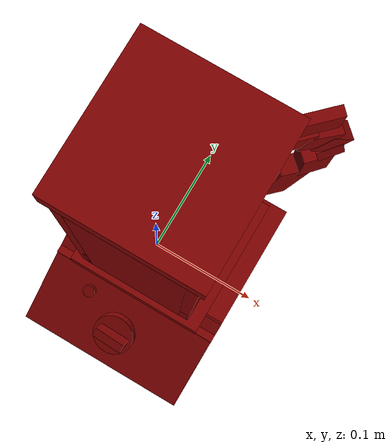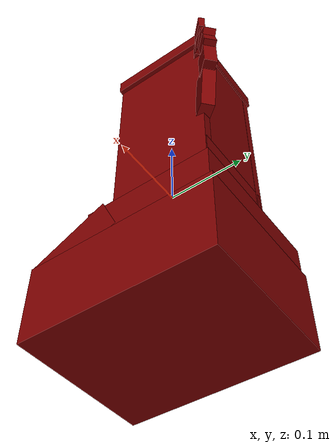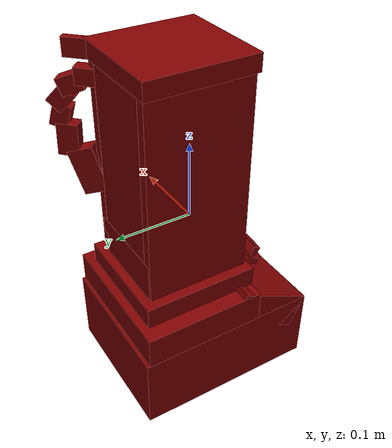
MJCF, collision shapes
<?xml version='1.0' encoding='UTF-8'?>
<mujoco model="model">
  <option timestep="0.002" gravity="0.0 0.0 -9.81"/>
  <compiler angle="radian"/>
  <asset>
    <mesh file="visuals/Blade001.obj" name="Blade001_vis"/>
    <mesh file="visuals/Body001.obj" name="Body001_vis"/>
    <mesh file="visuals/Button001.obj" name="Button001_vis"/>
    <mesh file="visuals/Jug001.obj" name="Jug001_vis"/>
    <mesh file="visuals/Jug001_Clear.obj" name="Jug001_Clear_vis"/>
    <mesh file="visuals/Knob001.obj" name="Knob001_vis"/>
    <mesh file="visuals/Lid001.obj" name="Lid001_vis"/>
    <texture file="visuals/T_BC001.png" name="Body001_material" type="2d"/>
    <material name="Body001_material" rgba="1 1 1 1.0" texture="Body001_material" shininess="0.141421377658844" specular="0.3103448502657381"/>
    <texture file="visuals/T_BC001.png" name="Button001_material" type="2d"/>
    <material name="Button001_material" rgba="1 1 1 1.0" texture="Button001_material" shininess="0.141421377658844" specular="0.3103448502657381"/>
    <texture file="visuals/T_BC001.png" name="Jug001_Clear_material" type="2d"/>
    <material name="Jug001_Clear_material" rgba="1 1 1 0.699999988079071" texture="Jug001_Clear_material" shininess="0.141421377658844" specular="0.3103448502657381"/>
    <texture file="visuals/T_BC001.png" name="Blade001_material" type="2d"/>
    <material name="Blade001_material" rgba="1 1 1 1.0" texture="Blade001_material" shininess="0.141421377658844" specular="3"/>
    <texture file="visuals/T_BC001.png" name="Jug001_material" type="2d"/>
    <material name="Jug001_material" rgba="1 1 1 1.0" texture="Jug001_material" shininess="0.141421377658844" specular="0.3103448502657381"/>
    <texture file="visuals/T_BC001.png" name="Lid001_material" type="2d"/>
    <material name="Lid001_material" rgba="1 1 1 1.0" texture="Lid001_material" shininess="0.141421377658844" specular="0.3103448502657381"/>
    <texture file="visuals/T_BC001.png" name="Knob001_material" type="2d"/>
    <material name="Knob001_material" rgba="1 1 1 1.0" texture="Knob001_material" shininess="0.141421377658844" specular="0.3103448502657381"/>
  </asset>
  <default>
    <default class="visual">
      <geom conaffinity="0" contype="0" group="1" type="mesh"/>
    </default>
    <default class="collision">
      <geom group="0" rgba="0.5 0 0 0.5"/>
    </default>
    <default class="spawn">
      <geom group="0" rgba="1 1 1 0.5" contype="0" conaffinity="0"/>
      <site group="0" rgba="1 1 1 0.5"/>
    </default>
    <default class="region">
      <geom group="1" conaffinity="0" contype="0" rgba="0 1 0 0"/>
    </default>
  </default>
  <worldbody>
    <body>
      <body name="object">
        <geom mesh="Body001_vis" type="mesh" solimp="0.998 0.998 0.001" solref="0.001 1" friction="0.95 0.3 0.1" class="visual" material="Body001_material"/>
        <geom class="collision" type="box" pos="-0.00002147 -0.00441655 -0.17498938" size="0.09426623582839966 0.12018150091171265 0.05047569051384926" quat="1.0 0.0 0.0 0.0"/>
        <geom class="collision" type="box" pos="-0.00064245 -0.06574792 -0.12190512" size="0.09364525973796844 0.053700391203165054 0.023921413347125053" quat="0.9748296737670898 0.22295093536376953 0.0 0.0"/>
        <geom class="collision" type="box" pos="0.00018059 0.02595534 -0.06946505" size="0.0737367644906044 0.0752071812748909 0.013908842578530312" quat="1.0 0.0 0.0 0.0"/>
        <geom class="collision" type="box" pos="-0.00064245 0.03169942 -0.10404636" size="0.09364525973796844 0.08006376773118973 0.02117438241839409" quat="1.0 0.0 0.0 0.0"/>
        <body name="Button001">
          <joint axis="0.0 0.4999999403953552 -0.8660253882408142" pos="-0.04367841 -0.06530490 -0.08817581" limited="true" name="Button001_joint" range="0.0 0.002" type="slide" damping="1" frictionloss="1" armature=".01" stiffness="0.5" springref="-0.5"/>
          <geom mesh="Button001_vis" type="mesh" solimp="0.998 0.998 0.001" solref="0.001 1" friction="0.95 0.3 0.1" class="visual" material="Button001_material"/>
          <geom class="collision" type="cylinder" pos="-0.04389239 -0.06643220 -0.08646378" size="0.006768199615180492 0.0021915838588029146" quat="0.9639899730682373 0.2659386098384857 -4.0169945262216606e-17 -4.33204661115555e-18"/>
        </body>
        <body name="Jug001_Clear">
          <geom class="region" name="reg_int" type="box" pos="0.0024833899999999985 0.023565485 0.10616642" size="0.037405469999999996 0.038185975000000004 0.0820578"/>
          <joint axis="0.0 0.0 1.0" pos="0.01373654 0.03952696 0.08051294" limited="true" name="Jug001_Clear_joint" range="0.0 0.05" type="slide" damping="1" frictionloss="1" armature=".01" stiffness="0.05"/>
          <geom mesh="Jug001_Clear_vis" type="mesh" solimp="0.998 0.998 0.001" solref="0.001 1" friction="0.95 0.3 0.1" class="visual" material="Jug001_Clear_material"/>
          <geom class="collision" type="box" pos="-0.00033165 -0.03700097 0.07271677" size="0.05070013180375099 0.006148476153612137 0.1268603503704071" quat="1.0 0.0 0.0 0.0"/>
          <geom class="collision" type="box" pos="-0.05555039 0.02377511 0.07271677" size="0.0061484710313379765 0.06666272133588791 0.1268603503704071" quat="1.0 0.0 0.0 0.0"/>
          <geom class="collision" type="box" pos="0.05462990 0.02377511 0.07271677" size="0.0061484710313379765 0.06666272133588791 0.1268603503704071" quat="1.0 0.0 0.0 0.0"/>
          <geom class="collision" type="box" pos="-0.00033165 0.08407823 0.07271677" size="0.05070013180375099 0.006148476153612137 0.1268603503704071" quat="1.0 0.0 0.0 0.0"/>
          <geom class="collision" type="box" pos="0.07456364 0.10604493 0.17313410" size="0.008146869018673897 0.014489687979221344 0.01081995852291584" quat="0.9147748947143555 -0.18078604340553284 0.07120805233716965 -0.35416480898857117"/>
          <geom class="collision" type="box" pos="0.06166478 0.09281201 0.18320061" size="0.008105769753456116 0.012879735790193081 0.01025380939245224" quat="0.9265184998512268 0.0 -0.0 -0.376249223947525"/>
          <geom class="collision" type="box" pos="0.08343097 0.11537700 0.15525619" size="0.008146869018673897 0.014489687979221344 0.01081995852291584" quat="0.8578605055809021 -0.36547520756721497 0.14268623292446136 -0.33187922835350037"/>
          <geom class="collision" type="box" pos="0.08176104 0.11330621 0.10343436" size="0.008295845240354538 0.020325474441051483 0.012872149236500263" quat="0.6699399948120117 -0.6485963463783264 0.2521308958530426 -0.2587145268917084"/>
          <geom class="collision" type="box" pos="0.08591630 0.11754181 0.13361492" size="0.008146869018673897 0.014489687979221344 0.01081995852291584" quat="0.7432904839515686 -0.5630417466163635 0.21907974779605865 -0.2872408926486969"/>
          <geom class="collision" type="box" pos="0.06638283 0.09800544 0.06453448" size="0.008534789085388184 0.029685476794838905 0.016163652762770653" quat="0.551007866859436 -0.7522546648979187 0.2921375334262848 -0.2125062644481659"/>
          <geom class="collision" type="box" pos="0.00046516 0.02377511 -0.03018199" size="0.058229099959135056 0.06666272133588791 0.02488800324499607" quat="1.0 0.0 0.0 0.0"/>
          <body name="Blade001">
            <joint axis="0.0 0.0 1.0" pos="0.00283731 0.02211281 0.00559409" limited="false" name="Blade001_joint" range="0 360" type="hinge" damping="1" frictionloss="1" armature=".01" stiffness="0.05"/>
            <geom mesh="Blade001_vis" type="mesh" solimp="0.998 0.998 0.001" solref="0.001 1" friction="0.95 0.3 0.1" class="visual" material="Blade001_material"/>
            <geom class="collision" type="cylinder" pos="0.00223650 0.02223911 0.00248152" size="0.010992518626153469 0.0019860181491822004" quat="1.0 0.0 0.0 0.0"/>
            <geom class="collision" type="box" pos="-0.00622816 0.03753667 0.00460831" size="0.004382163751870394 0.009873579256236553 0.0014099429827183485" quat="0.9596688747406006 0.10713987052440643 0.02883859910070896 0.2583118677139282"/>
            <geom class="collision" type="box" pos="-0.01331299 0.04974379 0.01119832" size="0.004382163751870394 0.006865778472274542 0.0006997823365963995" quat="0.9061315655708313 0.33371978998184204 0.08982662111520767 0.24390141665935516"/>
            <geom class="collision" type="box" pos="-0.01503233 0.02199415 0.00991785" size="0.002498094690963626 0.003913902677595615 0.00039891761844046414" quat="0.657715380191803 0.2422304004430771 0.246499702334404 0.6693077087402344"/>
            <geom class="collision" type="box" pos="-0.00744480 0.02213470 0.00548553" size="0.002498094690963626 0.005628528073430061 0.000803751521743834" quat="0.6832320690155029 0.15710075199604034 0.1570800542831421 0.6955854892730713"/>
            <geom class="collision" type="box" pos="-0.01368735 -0.00627486 0.01119832" size="0.004382163751870394 0.006865778472274542 0.0006997823365963995" quat="0.24510179460048676 0.09026868641376495 0.33360037207603455 0.905807614326477"/>
            <geom class="collision" type="box" pos="-0.00657020 0.00591344 0.00460831" size="0.004382163751870394 0.009873579256236553 0.0014099429827183485" quat="0.2595832347869873 0.02898053452372551 0.10710156708955765 0.9593257904052734"/>
            <geom class="collision" type="box" pos="0.02113731 0.02173126 0.00460831" size="0.004382163751870394 0.009873579256236553 0.0014099429827183485" quat="0.7020411491394043 0.07837764918804169 -0.07853382080793381 -0.7034398317337036"/>
            <geom class="collision" type="box" pos="0.03525141 0.02170317 0.01119832" size="0.004382163751870394 0.006865778472274542 0.0006997823365963995" quat="0.6628762483596802 0.24413099884986877 -0.24461738765239716 -0.6641968488693237"/>
            <geom class="collision" type="box" pos="0.00918651 0.01180637 0.00583893" size="0.0024980942253023386 0.005628528073430061 0.000803751521743834" quat="0.26403868198394775 0.05822960287332535 -0.21439240872859955 -0.9385780692100525"/>
            <geom class="collision" type="box" pos="0.01314704 0.00533300 0.01027125" size="0.0024980942253023386 0.003913902677595615 0.00039891761844046414" quat="0.2539174556732178 0.09351541101932526 -0.33270493149757385 -0.903376042842865"/>
            <geom class="collision" type="box" pos="0.01284448 0.03860110 0.01003208" size="0.0024980944581329823 0.003913902677595615 0.00039891761844046414" quat="0.9036177396774292 0.3327938914299011 -0.09319815039634705 -0.25305595993995667"/>
            <geom class="collision" type="box" pos="0.00890995 0.03211190 0.00559976" size="0.0024980942253023386 0.005628528073430061 0.0008037514635361731" quat="0.9389471411705017 0.21339333057403564 -0.06179073452949524 -0.2627231776714325"/>
          </body>
          <body name="Jug001">
            <geom mesh="Jug001_vis" type="mesh" solimp="0.998 0.998 0.001" solref="0.001 1" friction="0.95 0.3 0.1" class="visual" material="Jug001_material"/>
            <geom class="collision" type="box" pos="-0.00025046 0.02358901 -0.02734018" size="0.053218137472867966 0.05842722952365875 0.02310650795698166" quat="1.0 0.0 0.0 0.0"/>
            <geom class="collision" type="cylinder" pos="0.00293614 0.02158020 -0.00302864" size="0.03135425224900246 0.0020198319107294083" quat="1.0 0.0 0.0 0.0"/>
            <geom class="collision" type="box" pos="-0.00033165 -0.03700097 0.07271677" size="0.05070013180375099 0.006148476153612137 0.1268603503704071" quat="1.0 0.0 0.0 0.0"/>
            <geom class="collision" type="box" pos="-0.05555039 0.02377511 0.07271677" size="0.0061484710313379765 0.06666272133588791 0.1268603503704071" quat="1.0 0.0 0.0 0.0"/>
            <geom class="collision" type="box" pos="0.05462990 0.02377511 0.07271677" size="0.0061484710313379765 0.06666272133588791 0.1268603503704071" quat="1.0 0.0 0.0 0.0"/>
            <geom class="collision" type="box" pos="-0.00033165 0.08407823 0.07271677" size="0.05070013180375099 0.006148476153612137 0.1268603503704071" quat="1.0 0.0 0.0 0.0"/>
            <geom class="collision" type="box" pos="0.07456364 0.10604493 0.17313410" size="0.008146869018673897 0.014489687979221344 0.01081995852291584" quat="0.9147748947143555 -0.18078604340553284 0.07120805233716965 -0.35416480898857117"/>
            <geom class="collision" type="box" pos="0.06166478 0.09281201 0.18320061" size="0.008105769753456116 0.012879735790193081 0.01025380939245224" quat="0.9265184998512268 0.0 -0.0 -0.376249223947525"/>
            <geom class="collision" type="box" pos="0.08343097 0.11537700 0.15525619" size="0.008146869018673897 0.014489687979221344 0.01081995852291584" quat="0.8578605055809021 -0.36547520756721497 0.14268623292446136 -0.33187922835350037"/>
            <geom class="collision" type="box" pos="0.08176104 0.11330621 0.10343436" size="0.008295845240354538 0.020325474441051483 0.012872149236500263" quat="0.6699399948120117 -0.6485963463783264 0.2521308958530426 -0.2587145268917084"/>
            <geom class="collision" type="box" pos="0.08591630 0.11754181 0.13361492" size="0.008146869018673897 0.014489687979221344 0.01081995852291584" quat="0.7432904839515686 -0.5630417466163635 0.21907974779605865 -0.2872408926486969"/>
            <geom class="collision" type="box" pos="0.06638283 0.09800544 0.06453448" size="0.008534789085388184 0.029685476794838905 0.016163652762770653" quat="0.551007866859436 -0.7522546648979187 0.2921375334262848 -0.2125062644481659"/>
            <geom class="collision" type="box" pos="0.00046516 0.02377511 -0.03018199" size="0.058229099959135056 0.06666272133588791 0.02488800324499607" quat="1.0 0.0 0.0 0.0"/>
          </body>
          <body name="Lid001">
            <joint axis="0.0 0.0 1.0" pos="0.00908487 0.03301665 0.20795784" limited="true" name="Lid001_joint" range="0.0 0.05" type="slide" damping="1" frictionloss="1" armature=".01" stiffness="0.05"/>
            <geom mesh="Lid001_vis" type="mesh" solimp="0.998 0.998 0.001" solref="0.001 1" friction="0.95 0.3 0.1" class="visual" material="Lid001_material"/>
            <geom class="collision" type="box" pos="0.07172744 0.09866957 0.21236889" size="0.004358070436865091 0.014879566617310047 0.011254552751779556" quat="0.9234328269958496 0.0 -0.0 -0.38376015424728394"/>
            <geom class="collision" type="box" pos="-0.00029538 0.02356606 0.21297229" size="0.06565457582473755 0.06871627271175385 0.010651204735040665" quat="1.0 0.0 0.0 0.0"/>
          </body>
        </body>
        <body name="Knob001">
          <joint axis="0.0 0.5 -0.8660253882408142" pos="0.00031825 -0.09462214 -0.09418894" limited="true" name="Knob001_joint" range="0.0 3.141592653589793" type="hinge" damping="0.05" armature="0.001"/>
          <geom mesh="Knob001_vis" type="mesh" solimp="0.998 0.998 0.001" solref="0.001 1" friction="0.95 0.3 0.1" class="visual" material="Knob001_material"/>
          <geom class="collision" type="cylinder" pos="0.00041298 -0.09133510 -0.09954298" size="0.022349528968334198 0.004747109953314066" quat="0.9639899730682373 0.2659386098384857 -4.0169945262216606e-17 -4.33204661115555e-18"/>
          <geom class="collision" type="box" pos="0.00066754 -0.09641392 -0.09038294" size="0.005063396412879229 0.017123965546488762 0.009264831431210041" quat="0.6668792963027954 0.21136312186717987 0.17960307002067566 -0.6916215419769287"/>
        </body>
        <geom class="region" name="reg_main" type="box" pos="1.000000000001e-06 -0.004121 6.005000000003369e-06" size="0.09521162 0.12073614 0.226515665"/>
      </body>
    </body>
  </worldbody>
  <actuator>
    <motor name="Button001_joint_actuator" joint="Button001_joint" gear="0.5"/>
    <motor name="Jug001_Clear_joint_actuator" joint="Jug001_Clear_joint" gear="0.5"/>
    <motor name="Knob001_joint_actuator" joint="Knob001_joint" gear="10"/>
    <motor name="Blade001_joint_actuator" joint="Blade001_joint" gear="10"/>
    <motor name="Lid001_joint_actuator" joint="Lid001_joint" gear="0.5"/>
  </actuator>
</mujoco>
